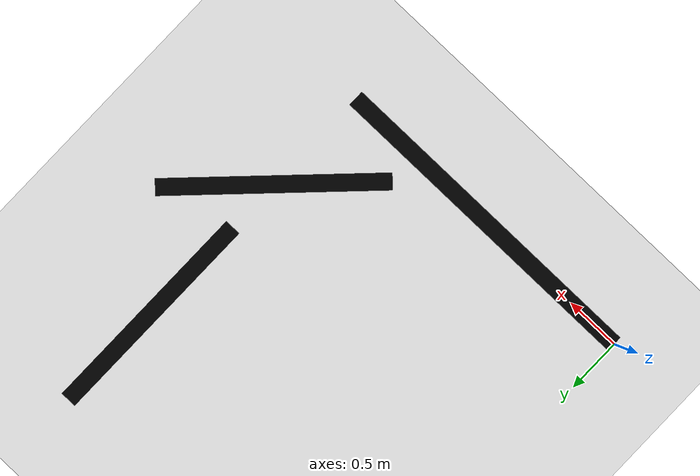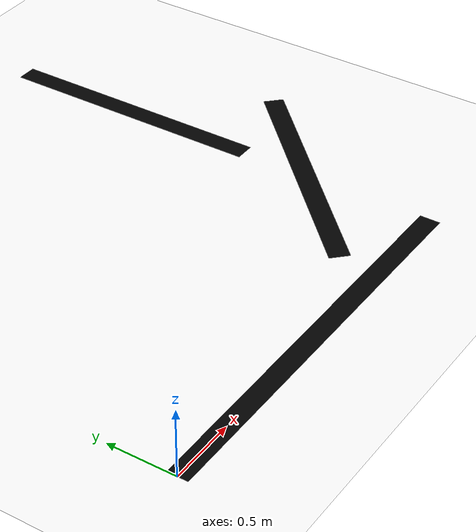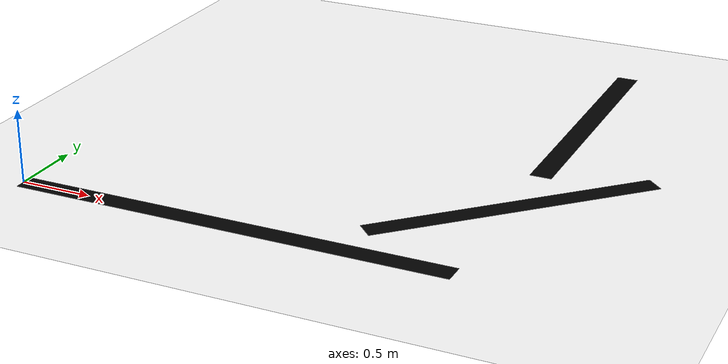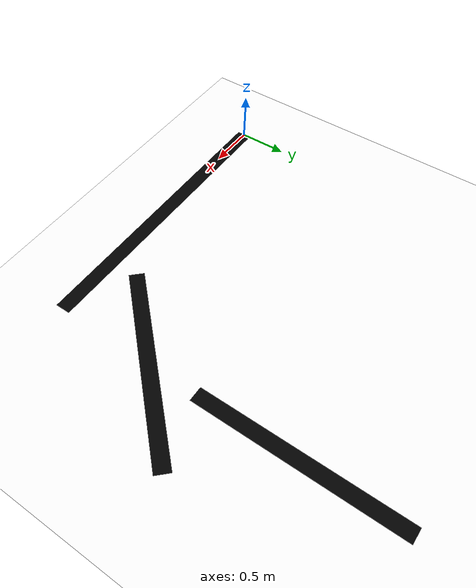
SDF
<?xml version="1.0" ?>
<sdf version="1.8">
  <world name="my_world">

    <!-- ================= PHYSICS ================= -->
    <physics type="ode">
      <max_step_size>0.005</max_step_size>
      <real_time_factor>1.0</real_time_factor>
      <real_time_update_rate>200</real_time_update_rate>
    </physics>

    <plugin filename="gz-sim-physics-system" name="gz::sim::systems::Physics"/>
    <plugin filename="gz-sim-user-commands-system" name="gz::sim::systems::UserCommands"/>
    <plugin filename="gz-sim-scene-broadcaster-system" name="gz::sim::systems::SceneBroadcaster"/>
    <plugin filename="gz-sim-sensors-system" name="gz::sim::systems::Sensors">
      <render_engine>ogre2</render_engine>
    </plugin>

    <scene>
      <ambient>0.7 0.7 0.7 1.0</ambient>
      <background>0.8 0.9 1.0 1.0</background>
      <shadows>true</shadows>
    </scene>

    <light name="sun" type="directional">
      <pose>0 0 15 0 0 0</pose>
      <cast_shadows>true</cast_shadows>
      <intensity>1.2</intensity>
      <direction>-0.5 0.1 -0.9</direction>
    </light>

    <!-- ================= WHITE GROUND PLANE ================= -->
    <model name="ground_plane">
      <static>true</static>
      <link name="link">
        <collision name="collision">
          <geometry><plane><normal>0 0 1</normal><size>50 50</size></plane></geometry>
        </collision>
        <visual name="visual">
          <geometry><plane><normal>0 0 1</normal><size>50 50</size></plane></geometry>
          <material>
            <ambient>0.95 0.95 0.95 1</ambient>
            <diffuse>0.95 0.95 0.95 1</diffuse>
          </material>
        </visual>
      </link>
    </model>

    <!-- ================= BLACK LINE TRACK ================= -->
    <!-- Straight Segment 1 -->
    <model name="line_seg_1">
      <pose>1.5 0 0.001 0 0 0</pose>
      <static>true</static>
      <link name="link">
        <visual name="visual">
          <geometry><box><size>3.0 0.15 0.001</size></box></geometry>
          <material>
            <ambient>0 0 0 1</ambient>
            <diffuse>0 0 0 1</diffuse>
          </material>
        </visual>
      </link>
    </model>

    <!-- Curve 1 -->
    <model name="line_curve_1">
      <pose>3.0 1.0 0.001 0 0 0.785</pose>
      <static>true</static>
      <link name="link">
        <visual name="visual">
          <geometry><box><size>2.0 0.15 0.001</size></box></geometry>
          <material>
            <ambient>0 0 0 1</ambient>
            <diffuse>0 0 0 1</diffuse>
          </material>
        </visual>
      </link>
    </model>

    <!-- Curve 2 -->
    <model name="line_curve_2">
      <pose>3.0 2.5 0.001 0 0 1.57</pose>
      <static>true</static>
      <link name="link">
        <visual name="visual">
          <geometry><box><size>2.0 0.15 0.001</size></box></geometry>
          <material>
            <ambient>0 0 0 1</ambient>
            <diffuse>0 0 0 1</diffuse>
          </material>
        </visual>
      </link>
    </model>

  </world>
</sdf>
